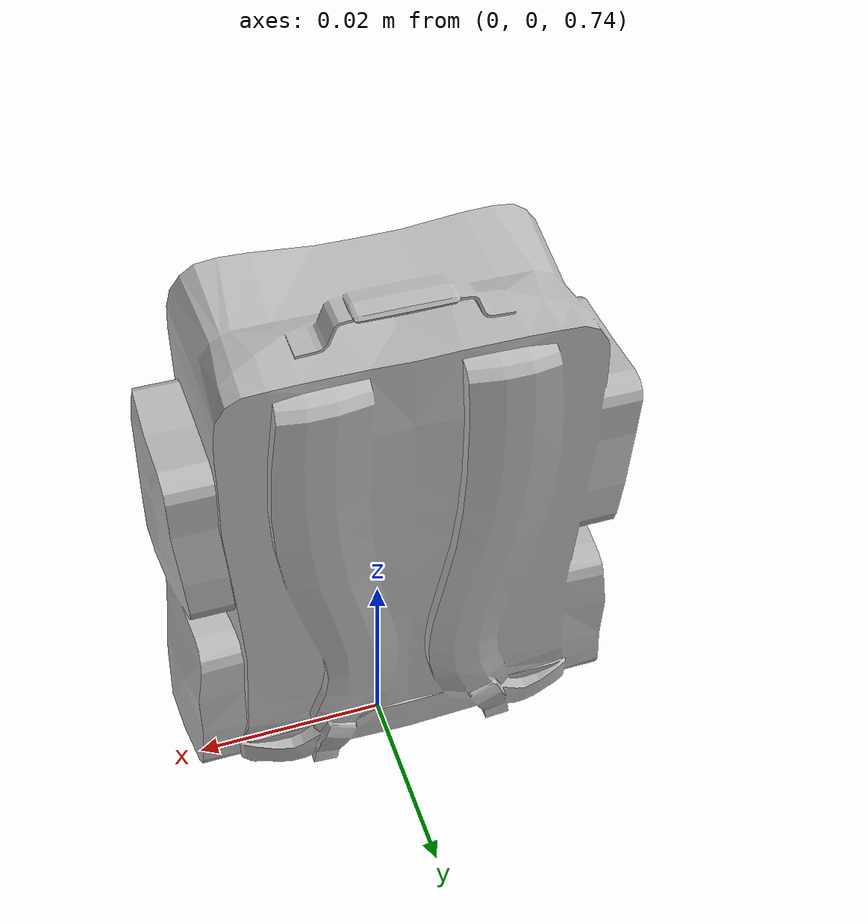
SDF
<?xml version="1.0" ?>
<sdf version="1.5">
  <model name="backpack">
    <pose>0 0 0.75  0 0 0</pose>
    <static>false</static>
    <link name="link">
      <inertial>
        <mass>10.0</mass>
        <inertia>
          <ixx>1</ixx>
          <ixy>0</ixy>
          <ixz>0</ixz>
          <iyy>1</iyy>
          <iyz>0</iyz>
          <izz>1</izz>
        </inertia>
      </inertial>

      <collision name="collision">
        <geometry>
          <box>
              <size>0.5 0.25 0.25</size>
          </box>
        </geometry>
	<surface>
          <contact>
            <ode>
              <max_vel>0.1</max_vel>
              <min_depth>0.001</min_depth>
            </ode>
          </contact>
        </surface>
      </collision>
      <visual name="visual">
        <geometry>
          <mesh>
            <uri>model://backpack/meshes/backpack.dae</uri>
	    <scale>0.1 0.1 0.1</scale>
          </mesh>
	</geometry>
      </visual>
    </link>
  </model>
</sdf>
